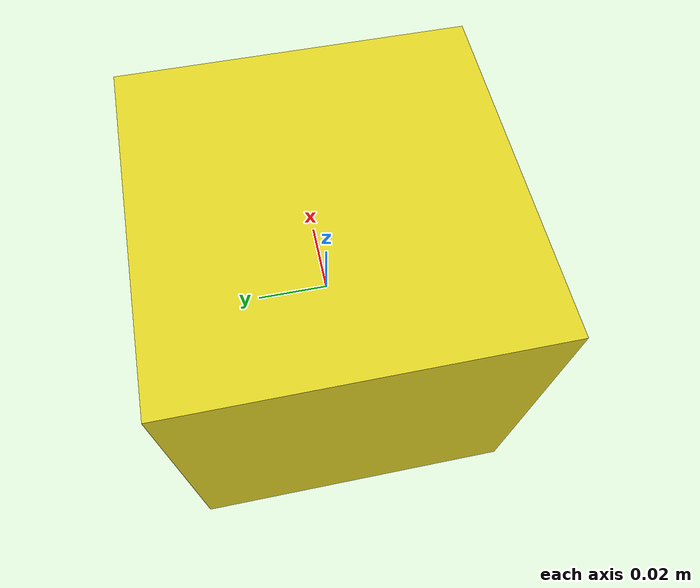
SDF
<?xml  version="1.0" ?>
<sdf version="1.5">

    <model name='yellow_colored_box'>
        <pose>0 0 0 0 -0 0</pose>
        <link name='link'>
            <inertial>
                <pose>0 0 0 0 -0 0</pose>
                <mass>0.281</mass>
                <inertia>
                    <ixx>0.0006167</ixx>
                    <ixy>0</ixy>
                    <ixz>0</ixz>
                    <iyy>0.0006167</iyy>
                    <iyz>0</iyz>
                    <izz>0.0006167</izz>
                </inertia>
            </inertial>
            <collision name="collision">
                <geometry>
                    <box>
                        <size>0.0937 0.0937 0.0937</size>
                    </box>
                </geometry>
                <surface>
                    <contact>
                        <ode>
                            <max_vel>1</max_vel>
                            <min_depth>0.001</min_depth>
                            <kp>1000000</kp>
                            <kd>10</kd>
                        </ode>
                    </contact>
                    <friction>
                        <ode>
                            <mu>1</mu>
                            <mu2>1</mu2>
                        </ode>
                    </friction>
                </surface>
            </collision>
            <visual name='box_visual'>
                <cast_shadows>false</cast_shadows>
                    <geometry>
                        <box>
                            <size>0.0937 0.0937 0.0937</size>
                        </box>
                    </geometry>
                    <material>
                    <script>
                            <uri>file://media/materials/scripts/gazebo.material</uri>
                        <name>Gazebo/Yellow</name>
                    </script>
                </material>
            </visual>
      </link>
    </model>
</sdf>
